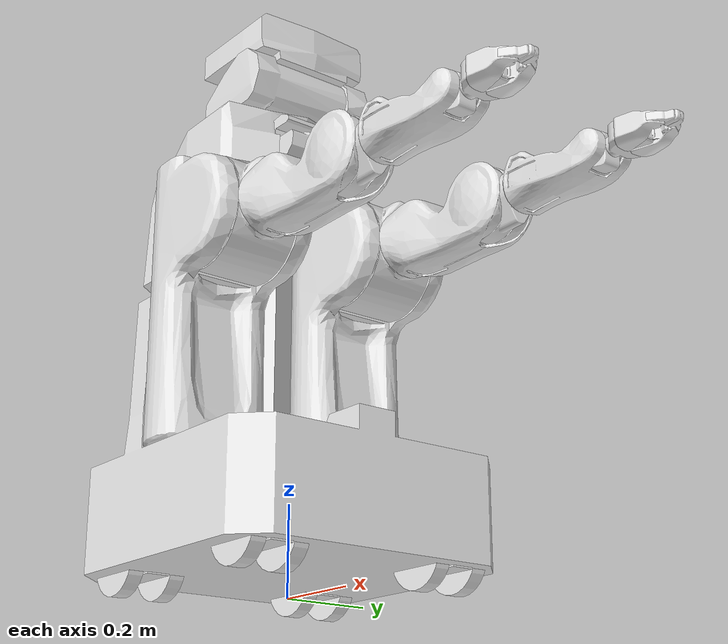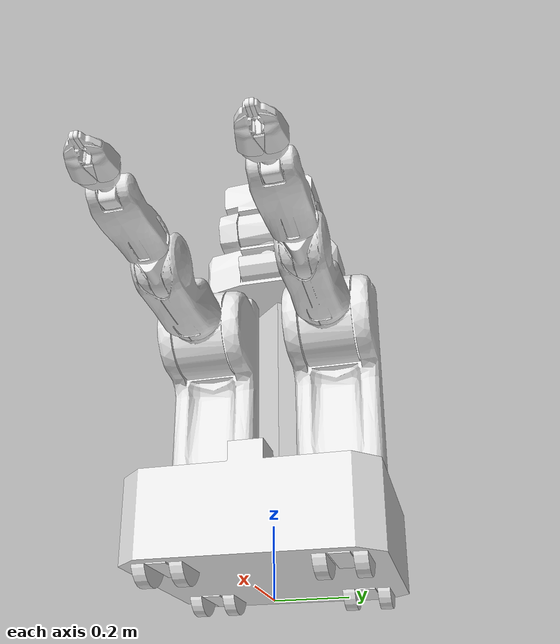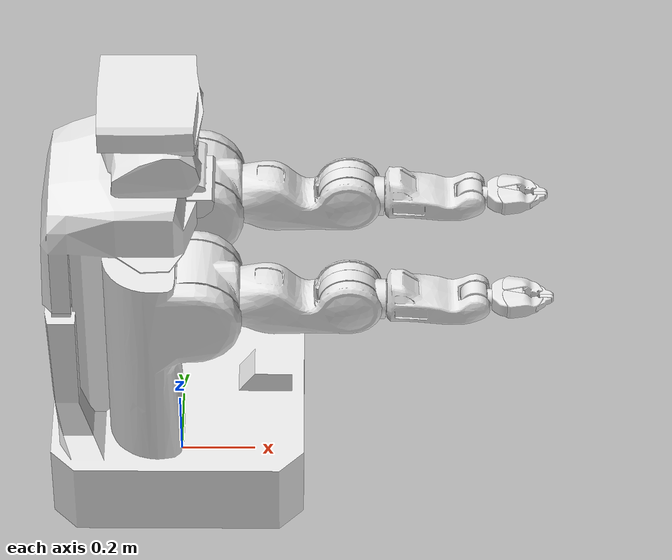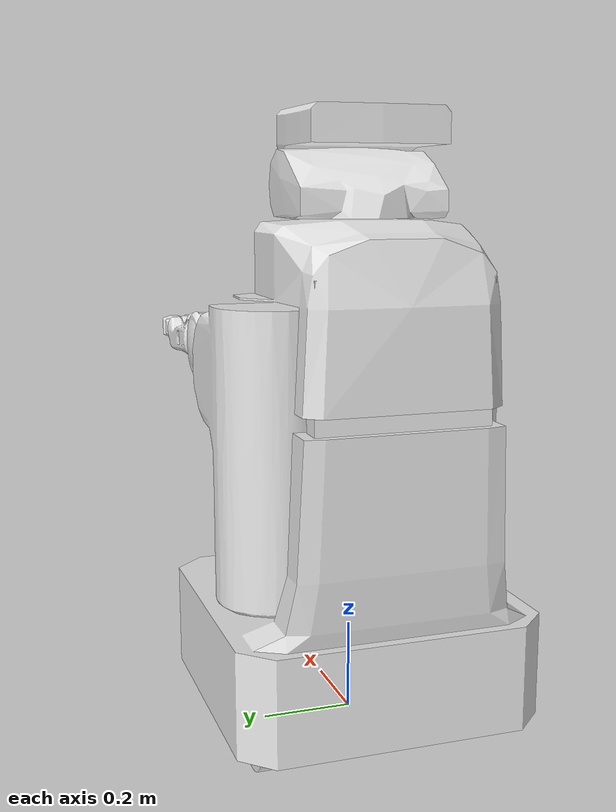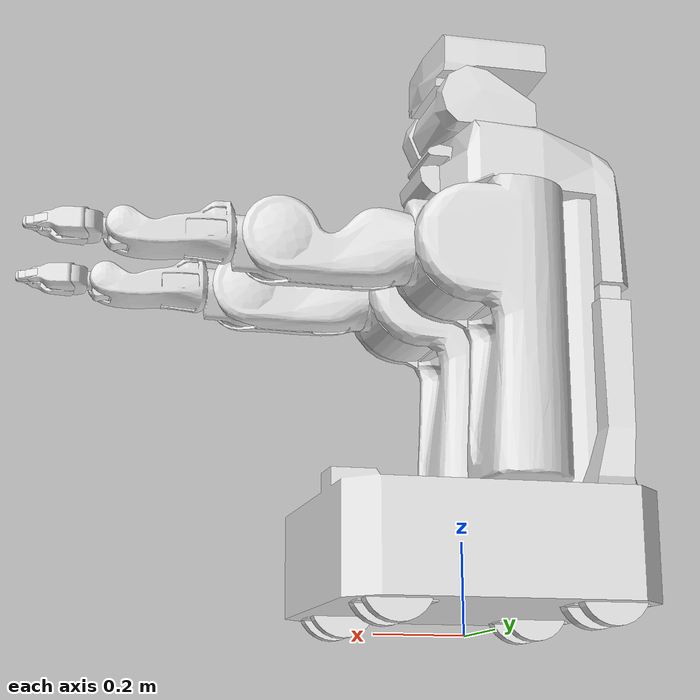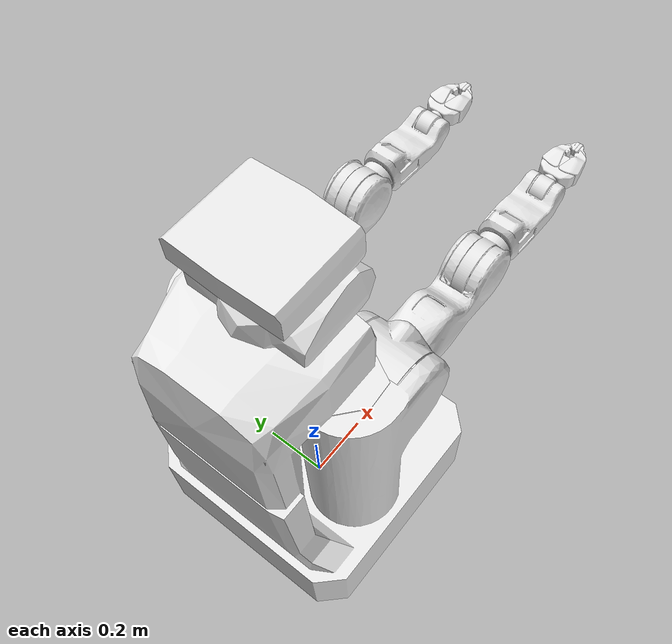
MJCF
<?xml version="1.0" ?>
<mujoco model="pr2">
	<compiler meshdir="pr2/meshes" texturedir="pr2/textures" angle="radian" autolimits="true" balanceinertia="true" inertiafromgeom="true" />
	<default>
		<default class="pr2_visual">
			<geom contype="0" conaffinity="0"/>
		</default>
		<default class="pr2_collision">
			<geom rgba="0.9 0.9 0.9 1.0" friction="0.7" solimp="0.95 0.99 0.001" solref="0.004 1"/>
		</default>
	</default>
	<asset>
		<mesh name="base_L" file="stl/base_L.stl" scale="1.0 1.0 1.0"/>
		<mesh name="caster_L" file="stl/caster_L.stl" scale="1.0 1.0 1.0"/>
		<mesh name="torso_lift_L" file="stl/torso_lift_L.stl" scale="1.0 1.0 1.0"/>
		<mesh name="head_pan_L" file="stl/head_pan_L.stl" scale="1.0 1.0 1.0"/>
		<mesh name="head_tilt_L" file="stl/head_tilt_L.stl" scale="1.0 1.0 1.0"/>
		<mesh name="tilting_hokuyo_L" file="stl/tilting_hokuyo_L.stl" scale="1.0 1.0 1.0"/>
		<mesh name="shoulder_pan" file="stl/shoulder_pan.stl" scale="1.0 1.0 1.0"/>
		<mesh name="shoulder_lift" file="stl/shoulder_lift.stl" scale="1.0 1.0 1.0"/>
		<mesh name="upper_arm_roll_L" file="stl/upper_arm_roll_L.stl" scale="1.0 1.0 1.0"/>
		<mesh name="upper_arm" file="stl/upper_arm.stl" scale="1.0 1.0 1.0"/>
		<mesh name="elbow_flex" file="stl/elbow_flex.stl" scale="1.0 1.0 1.0"/>
		<mesh name="forearm_roll_L" file="stl/forearm_roll_L.stl" scale="1.0 1.0 1.0"/>
		<mesh name="forearm" file="stl/forearm.stl" scale="1.0 1.0 1.0"/>
		<mesh name="wrist_flex" file="stl/wrist_flex.stl" scale="1.0 1.0 1.0"/>
		<mesh name="wrist_roll_L" file="stl/wrist_roll_L.stl" scale="1.0 1.0 1.0"/>
		<mesh name="gripper_palm" file="stl/gripper_palm.stl" scale="1.0 1.0 1.0"/>
		<mesh name="l_finger" file="stl/l_finger.stl" scale="1.0 1.0 1.0"/>
		<mesh name="l_finger_tip" file="stl/l_finger_tip.stl" scale="1.0 1.0 1.0"/>
	</asset>
	<worldbody>
		<body name="pr2" pos="0 0 0" quat="1.0 0.0 0.0 0.0" gravcomp="1">
			<joint name="odom_vel_lin_x_joint" type="slide" axis="1.0 0.0 0.0"/>
			<joint name="odom_vel_lin_y_joint" type="slide" axis="0.0 1.0 0.0"/>
			<joint name="odom_vel_ang_z_joint" type="hinge" axis="0.0 0.0 1.0"/>
			<body name="base_footprint" pos="0.0 0.0 0.0" quat="1.0 0.0 0.0 0.0" gravcomp="1">
				<inertial mass="1.0000001111620804e-06" pos="0.0 0.0 0.07100000232458115" quat="0.7071067690849304 0.0 0.7071067690849304 0.0" diaginertia="1.6666670214077195e-13 5.041167927544166e-09 5.041167927544166e-09" />
				<geom name="SM_base_footprint_collision_0" type="box" pos="0.0 0.0 0.07100000232458115" quat="1.0 0.0 0.0 0.0" size="0.0005000000237487257 0.0005000000237487257 0.0005000000237487257" class="pr2_collision" />
				<body name="base_link" pos="0.0 0.0 0.050999999046325684" quat="1.0 0.0 0.0 0.0" gravcomp="1">
					<geom name="SM_base_link_collision_0" type="mesh" pos="0.0 0.0 0.0" quat="1.0 0.0 0.0 0.0" mesh="base_L" class="pr2_collision" />
					<body name="base_laser_link" pos="0.2750000059604645 0.0 0.25200000405311584" quat="1.0 0.0 0.0 0.0" gravcomp="1">
						<inertial mass="0.0" pos="0.0 0.0 0.0" quat="1.0 0.0 0.0 0.0" diaginertia="0.0 0.0 0.0" />
					</body>
					<body name="fr_caster_rotation_link" pos="0.22460000216960907 -0.22460000216960907 0.028200000524520874" quat="1.0 0.0 0.0 0.0" gravcomp="1">
						<inertial mass="2.2135562896728516" pos="-0.0059445747174322605 1.1481000594670832e-09 0.08382795006036758" quat="0.5099974274635315 0.5099974274635315 0.48979854583740234 -0.48979854583740234" diaginertia="0.006514224223792553 0.025800351053476334 0.02824961021542549" />
						<geom name="SM_fr_caster_rotation_link_collision_0" type="mesh" pos="0.0 0.0 0.0" quat="1.0 0.0 0.0 0.0" mesh="caster_L" class="pr2_collision" />
						<joint name="fr_caster_rotation_joint" type="hinge" pos="0.0 0.0 6.938893903907228e-18" axis="0.0 0.0 1.0" />
						<body name="fr_caster_r_wheel_link" pos="0.0 -0.04899999871850014 0.0" quat="1.0 0.0 0.0 0.0" gravcomp="1">
							<inertial mass="0.5975016355514526" pos="0.0 0.0 0.0" quat="0.0 0.0 0.7071067690849304 -0.7071067690849304" diaginertia="0.0008931418415158987 0.0008931418415158987 0.0016711651114746928" />
							<geom name="SM_fr_caster_r_wheel_link_collision_0" type="cylinder" pos="0.0 0.0 0.0" quat="0.7071067690849304 0.7071067690849304 0.0 0.0" size="0.07479199767112732 0.017000000923871994 0.0" class="pr2_collision" />
							<joint name="fr_caster_r_wheel_joint" type="hinge" pos="0.0 0.0 0.0" axis="0.0 1.0 0.0" />
						</body>
						<body name="fr_caster_l_wheel_link" pos="0.0 0.04899999871850014 0.0" quat="1.0 0.0 0.0 0.0" gravcomp="1">
							<inertial mass="0.5975016355514526" pos="0.0 0.0 0.0" quat="0.0 0.0 0.7071067690849304 -0.7071067690849304" diaginertia="0.0008931418415158987 0.0008931418415158987 0.0016711651114746928" />
							<geom name="SM_fr_caster_l_wheel_link_collision_0" type="cylinder" pos="0.0 0.0 0.0" quat="0.7071067690849304 0.7071067690849304 0.0 0.0" size="0.07479199767112732 0.017000000923871994 0.0" class="pr2_collision" />
							<joint name="fr_caster_l_wheel_joint" type="hinge" pos="0.0 0.0 0.0" axis="0.0 1.0 0.0" />
						</body>
					</body>
					<body name="br_caster_rotation_link" pos="-0.22460000216960907 -0.22460000216960907 0.028200000524520874" quat="1.0 0.0 0.0 0.0" gravcomp="1">
						<inertial mass="2.2135562896728516" pos="-0.0059445747174322605 1.1481000594670832e-09 0.08382795006036758" quat="0.5099974274635315 0.5099974274635315 0.48979854583740234 -0.48979854583740234" diaginertia="0.006514224223792553 0.025800351053476334 0.02824961021542549" />
						<geom name="SM_br_caster_rotation_link_collision_0" type="mesh" pos="0.0 0.0 0.0" quat="1.0 0.0 0.0 0.0" mesh="caster_L" class="pr2_collision" />
						<joint name="br_caster_rotation_joint" type="hinge" pos="0.0 0.0 6.938893903907228e-18" axis="0.0 0.0 1.0" />
						<body name="br_caster_r_wheel_link" pos="0.0 -0.04899999871850014 0.0" quat="1.0 0.0 0.0 0.0" gravcomp="1">
							<inertial mass="0.5975016355514526" pos="0.0 0.0 0.0" quat="0.0 0.0 0.7071067690849304 -0.7071067690849304" diaginertia="0.0008931418415158987 0.0008931418415158987 0.0016711651114746928" />
							<geom name="SM_br_caster_r_wheel_link_collision_0" type="cylinder" pos="0.0 0.0 0.0" quat="0.7071067690849304 0.7071067690849304 0.0 0.0" size="0.07479199767112732 0.017000000923871994 0.0" class="pr2_collision" />
							<joint name="br_caster_r_wheel_joint" type="hinge" pos="0.0 0.0 0.0" axis="0.0 1.0 0.0" />
						</body>
						<body name="br_caster_l_wheel_link" pos="0.0 0.04899999871850014 0.0" quat="1.0 0.0 0.0 0.0" gravcomp="1">
							<inertial mass="0.5975016355514526" pos="0.0 0.0 0.0" quat="0.0 0.0 0.7071067690849304 -0.7071067690849304" diaginertia="0.0008931418415158987 0.0008931418415158987 0.0016711651114746928" />
							<geom name="SM_br_caster_l_wheel_link_collision_0" type="cylinder" pos="0.0 0.0 0.0" quat="0.7071067690849304 0.7071067690849304 0.0 0.0" size="0.07479199767112732 0.017000000923871994 0.0" class="pr2_collision" />
							<joint name="br_caster_l_wheel_joint" type="hinge" pos="0.0 0.0 0.0" axis="0.0 1.0 0.0" />
						</body>
					</body>
					<body name="torso_lift_motor_screw_link" pos="-0.15000000596046448 0.0 0.699999988079071" quat="1.0 0.0 0.0 0.0" gravcomp="1">
					</body>
					<body name="base_bellow_link" pos="-0.28999999165534973 0.0 0.800000011920929" quat="1.0 0.0 0.0 0.0" gravcomp="1">
						<inertial mass="5.550000190734863" pos="0.0 0.0 0.0" quat="0.5 0.5 0.5 0.5" diaginertia="0.04278125613927841 0.0644725039601326 0.10494126379489899" />
						<geom name="SM_base_bellow_link_collision_0" type="box" pos="0.0 0.0 0.0" quat="1.0 0.0 0.0 0.0" size="0.02500000037252903 0.1850000023841858 0.15000000596046448" class="pr2_collision" />
					</body>
					<body name="fl_caster_rotation_link" pos="0.22460000216960907 0.22460000216960907 0.028200000524520874" quat="1.0 0.0 0.0 0.0" gravcomp="1">
						<inertial mass="2.2135562896728516" pos="-0.0059445747174322605 1.1481000594670832e-09 0.08382795006036758" quat="0.5099974274635315 0.5099974274635315 0.48979854583740234 -0.48979854583740234" diaginertia="0.006514224223792553 0.025800351053476334 0.02824961021542549" />
						<geom name="SM_fl_caster_rotation_link_collision_0" type="mesh" pos="0.0 0.0 0.0" quat="1.0 0.0 0.0 0.0" mesh="caster_L" class="pr2_collision" />
						<joint name="fl_caster_rotation_joint" type="hinge" pos="0.0 0.0 6.938893903907228e-18" axis="0.0 0.0 1.0" />
						<body name="fl_caster_r_wheel_link" pos="0.0 -0.04899999871850014 0.0" quat="1.0 0.0 0.0 0.0" gravcomp="1">
							<inertial mass="0.5975016355514526" pos="0.0 0.0 0.0" quat="0.0 0.0 0.7071067690849304 -0.7071067690849304" diaginertia="0.0008931418415158987 0.0008931418415158987 0.0016711651114746928" />
							<geom name="SM_fl_caster_r_wheel_link_collision_0" type="cylinder" pos="0.0 0.0 0.0" quat="0.7071067690849304 0.7071067690849304 0.0 0.0" size="0.07479199767112732 0.017000000923871994 0.0" class="pr2_collision" />
							<joint name="fl_caster_r_wheel_joint" type="hinge" pos="0.0 0.0 0.0" axis="0.0 1.0 0.0" />
						</body>
						<body name="fl_caster_l_wheel_link" pos="0.0 0.04899999871850014 0.0" quat="1.0 0.0 0.0 0.0" gravcomp="1">
							<inertial mass="0.5975016355514526" pos="0.0 0.0 0.0" quat="0.0 0.0 0.7071067690849304 -0.7071067690849304" diaginertia="0.0008931418415158987 0.0008931418415158987 0.0016711651114746928" />
							<geom name="SM_fl_caster_l_wheel_link_collision_0" type="cylinder" pos="0.0 0.0 0.0" quat="0.7071067690849304 0.7071067690849304 0.0 0.0" size="0.07479199767112732 0.017000000923871994 0.0" class="pr2_collision" />
							<joint name="fl_caster_l_wheel_joint" type="hinge" pos="0.0 0.0 0.0" axis="0.0 1.0 0.0" />
						</body>
					</body>
					<body name="torso_lift_link" pos="-0.05000000074505806 0.0 0.739674985408783" quat="1.0 0.0 0.0 0.0" gravcomp="1">
						<inertial mass="51.778282165527344" pos="-0.1308211237192154 4.029592215459843e-09 0.016045676544308662" quat="-0.47259053587913513 -0.47259053587913513 -0.5259830951690674 0.5259830951690674" diaginertia="1.7747341394424438 3.3517322540283203 4.134549617767334" />
						<geom name="SM_torso_lift_link_collision_0" type="mesh" pos="0.0 0.0 0.0" quat="1.0 0.0 0.0 0.0" mesh="torso_lift_L" class="pr2_collision" />
						<joint name="torso_lift_joint" type="slide" pos="0.0 0.0 0.0" range="0.0 0.33000001311302185" axis="0.0 0.0 1.0" />
						<body name="r_torso_lift_side_plate_link" pos="0.05350000038743019 -0.20928500592708588 0.17662499845027924" quat="1.0 0.0 0.0 0.0" gravcomp="1">
							<inertial mass="0.0" pos="0.0 0.0 0.0" quat="1.0 0.0 0.0 0.0" diaginertia="0.0 0.0 0.0" />
						</body>
						<body name="head_pan_link" pos="-0.017069999128580093 0.0 0.38144999742507935" quat="1.0 0.0 0.0 0.0" gravcomp="1">
							<inertial mass="7.458215713500977" pos="0.031194353476166725 0.00014981458662077785 -0.00551903061568737" quat="0.041526779532432556 -0.7037166357040405 0.7080620527267456 -0.04131028428673744" diaginertia="0.04139060527086258 0.07164635509252548 0.095054991543293" />
							<geom name="SM_head_pan_link_collision_0" type="mesh" pos="0.0 0.0 0.0" quat="1.0 0.0 0.0 0.0" mesh="head_pan_L" class="pr2_collision" />
							<joint name="head_pan_joint" type="hinge" pos="0.0 0.0 -1.1102230246251565e-16" range="-3.006999969482422 3.006999969482422" axis="0.0 0.0 1.0" />
							<body name="head_tilt_link" pos="0.06800000369548798 0.0 0.0" quat="1.0 0.0 0.0 0.0" gravcomp="1">
								<inertial mass="5.654116153717041" pos="-0.05152539536356926 -1.8105554318026407e-06 0.114493727684021" quat="-1.3094496353005525e-05 0.4793747067451477 2.0897408830933273e-05 0.8776103258132935" diaginertia="0.06123911961913109 0.12264703214168549 0.13844925165176392" />
								<geom name="SM_head_tilt_link_collision_0" type="mesh" pos="0.0 0.0 0.0" quat="1.0 0.0 0.0 0.0" mesh="head_tilt_L" class="pr2_collision" />
								<joint name="head_tilt_joint" type="hinge" pos="0.0 0.0 0.0" range="-0.47123798727989197 1.3962600231170654" axis="0.0 1.0 0.0" />
								<body name="head_plate_frame" pos="0.02319999970495701 0.0 0.06449999660253525" quat="1.0 0.0 0.0 0.0" gravcomp="1">
									<inertial mass="0.0009999999310821295" pos="0.0 0.0 0.0" quat="1.0 0.0 0.0 0.0" diaginertia="1.666666449295917e-08 1.666666449295917e-08 1.666666449295917e-08" />
									<geom name="SM_head_plate_frame_collision_0" type="box" pos="0.0 0.0 0.0" quat="1.0 0.0 0.0 0.0" size="0.004999999888241291 0.004999999888241291 0.004999999888241291" class="pr2_collision" />
									<body name="projector_wg6802418_frame" pos="0.0 0.10999999940395355 0.05460000038146973" quat="1.0 0.0 0.0 0.0" gravcomp="1">
										<inertial mass="0.0" pos="0.0 0.0 0.0" quat="1.0 0.0 0.0 0.0" diaginertia="0.0 0.0 0.0" />
										<body name="projector_wg6802418_child_frame" pos="0.0 0.0 0.0" quat="-0.7071067690849304 0.0 0.7071067690849304 0.0" gravcomp="1">
											<inertial mass="0.0" pos="0.0 0.0 0.0" quat="1.0 0.0 0.0 0.0" diaginertia="0.0 0.0 0.0" />
										</body>
									</body>
									<body name="sensor_mount_link" pos="0.0 0.0 0.0" quat="1.0 0.0 0.0 0.0" gravcomp="1">
										<inertial mass="0.0" pos="0.0 0.0 0.0" quat="1.0 0.0 0.0 0.0" diaginertia="0.0 0.0 0.0" />
										<body name="double_stereo_link" pos="0.0 0.0 0.0" quat="1.0 0.0 0.0 0.0" gravcomp="1">
											<inertial mass="0.0" pos="0.0 0.0 0.0" quat="1.0 0.0 0.0 0.0" diaginertia="0.0 0.0 0.0" />
											<body name="narrow_stereo_link" pos="0.04500000178813934 0.05999999865889549 0.05009999871253967" quat="1.0 0.0 0.0 0.0" gravcomp="1">
												<inertial mass="0.0" pos="0.0 0.0 0.0" quat="1.0 0.0 0.0 0.0" diaginertia="0.0 0.0 0.0" />
												<body name="narrow_stereo_l_stereo_camera_frame" pos="0.0 0.0 0.0" quat="1.0 0.0 0.0 0.0" gravcomp="1">
													<inertial mass="0.0" pos="0.0 0.0 0.0" quat="1.0 0.0 0.0 0.0" diaginertia="0.0 0.0 0.0" />
													<body name="narrow_stereo_r_stereo_camera_frame" pos="0.0 -0.09000000357627869 0.0" quat="1.0 0.0 0.0 0.0" gravcomp="1">
														<inertial mass="0.0" pos="0.0 0.0 0.0" quat="1.0 0.0 0.0 0.0" diaginertia="0.0 0.0 0.0" />
														<body name="narrow_stereo_r_stereo_camera_optical_frame" pos="0.0 0.0 0.0" quat="0.4999999701976776 -0.5 0.5 -0.5" gravcomp="1">
															<inertial mass="0.0" pos="0.0 0.0 0.0" quat="1.0 0.0 0.0 0.0" diaginertia="0.0 0.0 0.0" />
														</body>
													</body>
													<body name="narrow_stereo_l_stereo_camera_optical_frame" pos="0.0 0.0 0.0" quat="0.4999999701976776 -0.5 0.5 -0.5" gravcomp="1">
														<inertial mass="0.0" pos="0.0 0.0 0.0" quat="1.0 0.0 0.0 0.0" diaginertia="0.0 0.0 0.0" />
													</body>
												</body>
												<body name="narrow_stereo_optical_frame" pos="0.0 0.0 0.0" quat="0.4999999701976776 -0.5 0.5 -0.5" gravcomp="1">
													<inertial mass="0.0" pos="0.0 0.0 0.0" quat="1.0 0.0 0.0 0.0" diaginertia="0.0 0.0 0.0" />
												</body>
											</body>
											<body name="wide_stereo_link" pos="0.04500000178813934 0.029999999329447746 0.05009999871253967" quat="1.0 0.0 0.0 0.0" gravcomp="1">
												<inertial mass="0.0" pos="0.0 0.0 0.0" quat="1.0 0.0 0.0 0.0" diaginertia="0.0 0.0 0.0" />
												<body name="wide_stereo_l_stereo_camera_frame" pos="0.0 0.0 0.0" quat="1.0 0.0 0.0 0.0" gravcomp="1">
													<inertial mass="0.0" pos="0.0 0.0 0.0" quat="1.0 0.0 0.0 0.0" diaginertia="0.0 0.0 0.0" />
													<body name="wide_stereo_r_stereo_camera_frame" pos="0.0 -0.09000000357627869 0.0" quat="1.0 0.0 0.0 0.0" gravcomp="1">
														<inertial mass="0.0" pos="0.0 0.0 0.0" quat="1.0 0.0 0.0 0.0" diaginertia="0.0 0.0 0.0" />
														<body name="wide_stereo_r_stereo_camera_optical_frame" pos="0.0 0.0 0.0" quat="0.4999999701976776 -0.5 0.5 -0.5" gravcomp="1">
															<inertial mass="0.0" pos="0.0 0.0 0.0" quat="1.0 0.0 0.0 0.0" diaginertia="0.0 0.0 0.0" />
														</body>
													</body>
													<body name="wide_stereo_l_stereo_camera_optical_frame" pos="0.0 0.0 0.0" quat="0.4999999701976776 -0.5 0.5 -0.5" gravcomp="1">
														<inertial mass="0.0" pos="0.0 0.0 0.0" quat="1.0 0.0 0.0 0.0" diaginertia="0.0 0.0 0.0" />
													</body>
												</body>
												<body name="wide_stereo_optical_frame" pos="0.0 0.0 0.0" quat="0.4999999701976776 -0.5 0.5 -0.5" gravcomp="1">
													<inertial mass="0.0" pos="0.0 0.0 0.0" quat="1.0 0.0 0.0 0.0" diaginertia="0.0 0.0 0.0" />
												</body>
											</body>
										</body>
										<body name="high_def_frame" pos="0.04645700007677078 -0.10999999940395355 0.05460000038146973" quat="1.0 0.0 0.0 0.0" gravcomp="1">
											<inertial mass="0.0" pos="0.0 0.0 0.0" quat="1.0 0.0 0.0 0.0" diaginertia="0.0 0.0 0.0" />
											<body name="high_def_optical_frame" pos="0.0 0.0 0.0" quat="0.4999999701976776 -0.5 0.5 -0.5" gravcomp="1">
												<inertial mass="0.0" pos="0.0 0.0 0.0" quat="1.0 0.0 0.0 0.0" diaginertia="0.0 0.0 0.0" />
											</body>
										</body>
									</body>
								</body>
							</body>
						</body>
						<body name="laser_tilt_mount_link" pos="0.0989300012588501 0.0 0.22699999809265137" quat="1.0 0.0 0.0 0.0" gravcomp="1">
							<inertial mass="1.5732203722000122" pos="-0.006016708444803953 3.2764393975703854e-10 0.0022414783015847206" quat="-0.3104150593280792 0.6353286504745483 0.6353286504745483 -0.3104150593280792" diaginertia="0.002926282351836562 0.004535055253654718 0.005101508926600218" />
							<geom name="SM_laser_tilt_mount_link_collision_0" type="mesh" pos="0.0 0.0 0.0" quat="1.0 0.0 0.0 0.0" mesh="tilting_hokuyo_L" class="pr2_collision" />
							<joint name="laser_tilt_mount_joint" type="hinge" pos="0.0 0.0 -1.1102230246251565e-16" range="-0.7853999733924866 1.483530044555664" axis="0.0 1.0 0.0" />
							<body name="laser_tilt_link" pos="0.0 0.0 0.029999999329447746" quat="1.0 0.0 0.0 0.0" gravcomp="1">
								<inertial mass="0.0" pos="0.0 0.0 0.0" quat="1.0 0.0 0.0 0.0" diaginertia="0.0 0.0 0.0" />
							</body>
						</body>
						<body name="r_shoulder_pan_link" pos="0.0 -0.18799999356269836 0.0" quat="1.0 0.0 0.0 0.0" gravcomp="1">
							<inertial mass="27.858089447021484" pos="-0.007217532955110073 -1.2285015145607758e-05 -0.15199442207813263" quat="0.00025214478955604136 -0.6800189018249512 0.0002595585829112679 0.7331945300102234" diaginertia="0.2705267369747162 1.7231812477111816 1.7425432205200195" />
							<geom name="SM_r_shoulder_pan_link_collision_0" type="mesh" pos="0.0 0.0 0.0" quat="1.0 0.0 0.0 0.0" mesh="shoulder_pan" class="pr2_collision" />
							<joint name="r_shoulder_pan_joint" type="hinge" pos="0.0 0.0 0.0" range="-2.285398244857788 0.7146018147468567" axis="0.0 0.0 1.0" />
							<body name="r_shoulder_lift_link" pos="0.10000000149011612 0.0 0.0" quat="1.0 0.0 0.0 0.0" gravcomp="1">
								<inertial mass="0.32213330268859863" pos="-0.011961976066231728 0.0005128994234837592 0.0035168323665857315" quat="-0.5297175049781799 0.5324012637138367 0.4633755385875702 0.4703523814678192" diaginertia="0.002866726601496339 0.0035295477136969566 0.005175495985895395" />
								<geom name="SM_r_shoulder_lift_link_collision_0" type="mesh" pos="0.0 0.0 0.0" quat="1.0 0.0 0.0 0.0" mesh="shoulder_lift" class="pr2_collision" />
								<joint name="r_shoulder_lift_joint" type="hinge" pos="0.0 0.0 0.0" range="-0.5235999822616577 1.3963000774383545" axis="0.0 1.0 0.0" />
								<body name="r_upper_arm_roll_link" pos="0.0 0.0 0.0" quat="1.0 0.0 0.0 0.0" gravcomp="1">
									<inertial mass="0.07235559076070786" pos="0.12487796694040298 -2.818719167407835e-06 -1.3431765637506032e-06" quat="-0.7070866227149963 0.7071269154548645 -1.2402690117596649e-05 3.837394160655094e-06" diaginertia="0.00022902380442246795 0.0011928267776966095 0.0012989923125132918" />
									<geom name="SM_r_upper_arm_roll_link_collision_0" type="mesh" pos="0.0 0.0 0.0" quat="1.0 0.0 0.0 0.0" mesh="upper_arm_roll_L" class="pr2_collision" />
									<joint name="r_upper_arm_roll_joint" type="hinge" pos="0.0 0.0 0.0" range="-3.9000000953674316 0.800000011920929" axis="1.0 0.0 0.0" />
									<body name="r_upper_arm_link" pos="0.0 0.0 0.0" quat="1.0 0.0 0.0 0.0" gravcomp="1">
										<inertial mass="5.2022385597229" pos="0.2734791040420532 -3.200087303412147e-05 -0.010643254034221172" quat="0.7068957090377808 0.7070910930633545 0.01264550257474184 -0.012677999213337898" diaginertia="0.016427578404545784 0.453969269990921 0.4549430012702942" />
										<geom name="SM_r_upper_arm_link_collision_0" type="mesh" pos="0.0 0.0 0.0" quat="1.0 0.0 0.0 0.0" mesh="upper_arm" class="pr2_collision" />
										<body name="r_elbow_flex_link" pos="0.4000000059604645 0.0 0.0" quat="1.0 0.0 0.0 0.0" gravcomp="1">
											<inertial mass="0.18842573463916779" pos="0.06674972921609879 -0.0002075084048556164 -0.012235036119818687" quat="0.7037703990936279 0.7038841247558594 0.06714816391468048 -0.06888704746961594" diaginertia="0.00034694798523560166 0.00123549101408571 0.0014423702377825975" />
											<geom name="SM_r_elbow_flex_link_collision_0" type="mesh" pos="0.0 0.0 0.0" quat="1.0 0.0 0.0 0.0" mesh="elbow_flex" class="pr2_collision" />
											<joint name="r_elbow_flex_joint" type="hinge" pos="0.0 0.0 0.0" range="-2.3213002681732178 0.0" axis="0.0 1.0 0.0" />
											<body name="r_forearm_roll_link" pos="0.0 0.0 0.0" quat="1.0 0.0 0.0 0.0" gravcomp="1">
												<inertial mass="0.05108305439352989" pos="0.06429405510425568 1.1574408745218534e-05 0.003290909342467785" quat="0.9995561838150024 0.00023118837270885706 -0.02978873811662197 0.00011263530905125663" diaginertia="2.3116032025427558e-05 0.00030341188539750874 0.00030664115911349654" />
												<geom name="SM_r_forearm_roll_link_collision_0" type="mesh" pos="0.0 0.0 0.0" quat="1.0 0.0 0.0 0.0" mesh="forearm_roll_L" class="pr2_collision" />
												<joint name="r_forearm_roll_joint" type="hinge" pos="0.0 0.0 0.0" axis="1.0 0.0 0.0" />
												<body name="r_forearm_cam_frame" pos="0.13500000536441803 0.0 0.04399999976158142" quat="0.6792877912521362 0.679287850856781 -0.19638746976852417 0.19638748466968536" gravcomp="1">
													<inertial mass="0.0" pos="0.0 0.0 0.0" quat="1.0 0.0 0.0 0.0" diaginertia="0.0 0.0 0.0" />
													<body name="r_forearm_cam_optical_frame" pos="0.0 0.0 -2.7755575615628914e-17" quat="0.4999999701976776 -0.5 0.5 -0.5" gravcomp="1">
														<inertial mass="0.0" pos="0.0 0.0 0.0" quat="1.0 0.0 0.0 0.0" diaginertia="0.0 0.0 0.0" />
													</body>
												</body>
												<body name="r_forearm_link" pos="0.0 0.0 0.0" quat="1.0 0.0 0.0 0.0" gravcomp="1">
													<inertial mass="2.0103166103363037" pos="0.201139897108078 1.223308117914712e-05 -0.004733517300337553" quat="-4.6840552386129275e-05 0.9998863339424133 2.6327637897338718e-05 -0.015078271739184856" diaginertia="0.003459537634626031 0.09273631125688553 0.09368810802698135" />
													<geom name="SM_r_forearm_link_collision_0" type="mesh" pos="0.0 0.0 0.0" quat="1.0 0.0 0.0 0.0" mesh="forearm" class="pr2_collision" />
													<body name="r_wrist_flex_link" pos="0.32100000977516174 0.0 0.0" quat="1.0 0.0 0.0 0.0" gravcomp="1">
														<inertial mass="0.1802304983139038" pos="-0.0017590946517884731 1.8078018229061854e-06 -0.0012588765239343047" quat="0.5507289171218872 0.5508716106414795 0.44338276982307434 -0.44345223903656006" diaginertia="8.03590810392052e-05 9.936121932696551e-05 0.000124882732052356" />
														<geom name="SM_r_wrist_flex_link_collision_0" type="mesh" pos="0.0 0.0 0.0" quat="1.0 0.0 0.0 0.0" mesh="wrist_flex" class="pr2_collision" />
														<joint name="r_wrist_flex_joint" type="hinge" pos="0.0 0.0 0.0" range="-2.180000066757202 0.0" axis="0.0 1.0 0.0" />
														<body name="r_wrist_roll_link" pos="0.0 0.0 0.0" quat="1.0 0.0 0.0 0.0" gravcomp="1">
															<inertial mass="0.011862936429679394" pos="0.03189396485686302 -1.0933553312497679e-05 -9.648863397160312e-07" quat="0.9961433410644531 0.0877404734492302 4.841649570153095e-06 -0.0001755533885443583" diaginertia="1.4964700767450267e-06 1.311536743742181e-05 1.311776304646628e-05" />
															<geom name="SM_r_wrist_roll_link_collision_0" type="mesh" pos="0.0 0.0 0.0" quat="1.0 0.0 0.0 0.0" mesh="wrist_roll_L" class="pr2_collision" />
															<joint name="r_wrist_roll_joint" type="hinge" pos="0.0 0.0 0.0" axis="1.0 0.0 0.0" />
															<body name="r_gripper_palm_link" pos="0.0 0.0 0.0" quat="1.0 0.0 0.0 0.0" gravcomp="1">
																<inertial mass="0.346778929233551" pos="0.08001227676868439 -1.348753926322388e-06 2.0504555777733913e-06" quat="-6.546391523443162e-05 1.0 -1.1079485375375953e-05 1.3545548426918685e-05" diaginertia="0.0002749123377725482 0.0024741138331592083 0.002621866762638092" />
																<geom name="SM_r_gripper_palm_link_collision_0" type="mesh" pos="0.0 0.0 0.0" quat="1.0 0.0 0.0 0.0" mesh="gripper_palm" class="pr2_collision" />
																<body name="r_gripper_motor_accelerometer_link" pos="0.0 0.0 0.0" quat="1.0 0.0 0.0 0.0" gravcomp="1">
																	<inertial mass="1.0000001111620804e-06" pos="0.0 0.0 0.0" quat="1.0 0.0 0.0 0.0" diaginertia="1.6666670214077195e-13 1.6666670214077195e-13 1.6666670214077195e-13" />
																	<geom name="SM_r_gripper_motor_accelerometer_link_collision_0" type="box" pos="0.0 0.0 0.0" quat="1.0 0.0 0.0 0.0" size="0.0005000000237487257 0.0005000000237487257 0.0005000000237487257" class="pr2_collision" />
																</body>
																<body name="r_gripper_motor_slider_link" pos="0.1682800054550171 0.0 0.0" quat="1.0 0.0 0.0 0.0" gravcomp="1">
																	<body name="r_gripper_motor_screw_link" pos="0.0 0.0 0.0" quat="1.0 0.0 0.0 0.0" gravcomp="1">
																	</body>
																</body>
																<body name="r_gripper_l_finger_link" pos="0.07690999656915665 0.009999999776482582 0.0" quat="1.0 0.0 0.0 0.0" gravcomp="1">
																	<inertial mass="0.18087133765220642" pos="0.031097745522856712 0.017811013385653496 6.266719196901249e-07" quat="0.9800462126731873 0.0005514603690244257 0.00012912458623759449 0.1987690031528473" diaginertia="7.974637992447242e-05 0.0003700049710460007 0.0003738711238838732" />
																	<geom name="SM_r_gripper_l_finger_link_collision_0" type="mesh" pos="0.0 0.0 0.0" quat="1.0 0.0 0.0 0.0" mesh="l_finger" class="pr2_collision" />
																	<joint name="r_gripper_l_finger_joint" type="hinge" pos="0.0 0.0 0.0" range="0.0 0.5479999780654907" axis="0.0 0.0 1.0" />
																	<body name="r_gripper_l_finger_tip_link" pos="0.09137000143527985 0.00494999997317791 0.0" quat="1.0 0.0 0.0 0.0" gravcomp="1">
																		<inertial mass="0.019972020760178566" pos="0.004215516149997711 0.0014496605144813657 -2.577246050350368e-06" quat="0.9347647428512573 -0.0006915477570146322 0.00018482831364963204 -0.35526666045188904" diaginertia="1.6885959439605358e-06 6.2432159211311955e-06 6.715718882333022e-06" />
																		<geom name="SM_r_gripper_l_finger_tip_link_collision_0" type="mesh" pos="0.0 0.0 0.0" quat="1.0 0.0 0.0 0.0" mesh="l_finger_tip" class="pr2_collision" />
																		<joint name="r_gripper_l_finger_tip_joint" type="hinge" pos="0.0 0.0 0.0" range="0.0 0.5479999780654907" axis="0.0 0.0 -1.0" />
																	</body>
																</body>
																<body name="r_gripper_r_finger_link" pos="0.07690999656915665 -0.009999999776482582 0.0" quat="1.0 0.0 0.0 0.0" gravcomp="1">
																	<inertial mass="0.18087133765220642" pos="0.031097745522856712 -0.017811013385653496 -6.282289746195602e-07" quat="0.9800462126731873 0.0005515032098628581 -0.00012911589874420315 -0.1987690031528473" diaginertia="7.974637992447242e-05 0.0003700049710460007 0.0003738711238838732" />
																	<geom name="SM_r_gripper_r_finger_link_collision_0" type="mesh" pos="0.0 0.0 0.0" quat="-4.371138828673793e-08 1.0 0.0 0.0" mesh="l_finger" class="pr2_collision" />
																	<joint name="r_gripper_r_finger_joint" type="hinge" pos="0.0 0.0 0.0" range="0.0 0.5479999780654907" axis="0.0 0.0 -1.0" />
																	<body name="r_gripper_r_finger_tip_link" pos="0.09137000143527985 -0.00494999997317791 0.0" quat="1.0 0.0 0.0 0.0" gravcomp="1">
																		<inertial mass="0.019972020760178566" pos="0.004215516149997711 -0.0014496605144813657 2.577119403213146e-06" quat="0.9347647428512573 -0.000691506895236671 -0.00018484385509509593 0.35526666045188904" diaginertia="1.6885959439605358e-06 6.2432159211311955e-06 6.715718882333022e-06" />
																		<geom name="SM_r_gripper_r_finger_tip_link_collision_0" type="mesh" pos="0.0 0.0 0.0" quat="-4.371138828673793e-08 1.0 0.0 0.0" mesh="l_finger_tip" class="pr2_collision" />
																		<joint name="r_gripper_r_finger_tip_joint" type="hinge" pos="0.0 0.0 0.0" range="0.0 0.5479999780654907" axis="0.0 0.0 1.0" />
																		<body name="r_gripper_l_finger_tip_frame" pos="0.0 0.0 0.0" quat="1.0 0.0 0.0 0.0" gravcomp="1">
																		</body>
																	</body>
																</body>
																<body name="r_gripper_led_frame" pos="0.05130000039935112 0.0 0.024399999529123306" quat="1.0 0.0 0.0 0.0" gravcomp="1">
																	<inertial mass="0.0" pos="0.0 0.0 0.0" quat="1.0 0.0 0.0 0.0" diaginertia="0.0 0.0 0.0" />
																</body>
																<body name="r_gripper_tool_frame" pos="0.18000000715255737 0.0 0.0" quat="1.0 0.0 0.0 0.0" gravcomp="1">
																	<inertial mass="0.0" pos="0.0 0.0 0.0" quat="1.0 0.0 0.0 0.0" diaginertia="0.0 0.0 0.0" />
																</body>
															</body>
														</body>
													</body>
												</body>
											</body>
										</body>
									</body>
								</body>
							</body>
						</body>
						<body name="l_shoulder_pan_link" pos="0.0 0.18799999356269836 0.0" quat="1.0 0.0 0.0 0.0" gravcomp="1">
							<inertial mass="27.858089447021484" pos="-0.007217532955110073 -1.2285015145607758e-05 -0.15199442207813263" quat="0.00025214478955604136 -0.6800189018249512 0.0002595585829112679 0.7331945300102234" diaginertia="0.2705267369747162 1.7231812477111816 1.7425432205200195" />
							<geom name="SM_l_shoulder_pan_link_collision_0" type="mesh" pos="0.0 0.0 0.0" quat="1.0 0.0 0.0 0.0" mesh="shoulder_pan" class="pr2_collision" />
							<joint name="l_shoulder_pan_joint" type="hinge" pos="0.0 0.0 0.0" range="-0.7146018147468567 2.285398244857788" axis="0.0 0.0 1.0" />
							<body name="l_shoulder_lift_link" pos="0.10000000149011612 0.0 0.0" quat="1.0 0.0 0.0 0.0" gravcomp="1">
								<inertial mass="0.32213330268859863" pos="-0.011961976066231728 0.0005128994234837592 0.0035168323665857315" quat="-0.5297175049781799 0.5324012637138367 0.4633755385875702 0.4703523814678192" diaginertia="0.002866726601496339 0.0035295477136969566 0.005175495985895395" />
								<geom name="SM_l_shoulder_lift_link_collision_0" type="mesh" pos="0.0 0.0 0.0" quat="1.0 0.0 0.0 0.0" mesh="shoulder_lift" class="pr2_collision" />
								<joint name="l_shoulder_lift_joint" type="hinge" pos="0.0 0.0 0.0" range="-0.5235999822616577 1.3963000774383545" axis="0.0 1.0 0.0" />
								<body name="l_upper_arm_roll_link" pos="0.0 0.0 0.0" quat="1.0 0.0 0.0 0.0" gravcomp="1">
									<inertial mass="0.07235559076070786" pos="0.12487796694040298 -2.818719167407835e-06 -1.3431765637506032e-06" quat="-0.7070866227149963 0.7071269154548645 -1.2402690117596649e-05 3.837394160655094e-06" diaginertia="0.00022902380442246795 0.0011928267776966095 0.0012989923125132918" />
									<geom name="SM_l_upper_arm_roll_link_collision_0" type="mesh" pos="0.0 0.0 0.0" quat="1.0 0.0 0.0 0.0" mesh="upper_arm_roll_L" class="pr2_collision" />
									<joint name="l_upper_arm_roll_joint" type="hinge" pos="0.0 0.0 0.0" range="-0.800000011920929 3.9000000953674316" axis="1.0 0.0 0.0" />
									<body name="l_upper_arm_link" pos="0.0 0.0 0.0" quat="1.0 0.0 0.0 0.0" gravcomp="1">
										<inertial mass="5.2022385597229" pos="0.2734791040420532 -3.200087303412147e-05 -0.010643254034221172" quat="0.7068957090377808 0.7070910930633545 0.01264550257474184 -0.012677999213337898" diaginertia="0.016427578404545784 0.453969269990921 0.4549430012702942" />
										<geom name="SM_l_upper_arm_link_collision_0" type="mesh" pos="0.0 0.0 0.0" quat="1.0 0.0 0.0 0.0" mesh="upper_arm" class="pr2_collision" />
										<body name="l_elbow_flex_link" pos="0.4000000059604645 0.0 0.0" quat="1.0 0.0 0.0 0.0" gravcomp="1">
											<inertial mass="0.18842573463916779" pos="0.06674972921609879 -0.0002075084048556164 -0.012235036119818687" quat="0.7037703990936279 0.7038841247558594 0.06714816391468048 -0.06888704746961594" diaginertia="0.00034694798523560166 0.00123549101408571 0.0014423702377825975" />
											<geom name="SM_l_elbow_flex_link_collision_0" type="mesh" pos="0.0 0.0 0.0" quat="1.0 0.0 0.0 0.0" mesh="elbow_flex" class="pr2_collision" />
											<joint name="l_elbow_flex_joint" type="hinge" pos="0.0 0.0 0.0" range="-2.3213002681732178 0.0" axis="0.0 1.0 0.0" />
											<body name="l_forearm_roll_link" pos="0.0 0.0 0.0" quat="1.0 0.0 0.0 0.0" gravcomp="1">
												<inertial mass="0.05108305439352989" pos="0.06429405510425568 1.1574408745218534e-05 0.003290909342467785" quat="0.9995561838150024 0.00023118837270885706 -0.02978873811662197 0.00011263530905125663" diaginertia="2.3116032025427558e-05 0.00030341188539750874 0.00030664115911349654" />
												<geom name="SM_l_forearm_roll_link_collision_0" type="mesh" pos="0.0 0.0 0.0" quat="1.0 0.0 0.0 0.0" mesh="forearm_roll_L" class="pr2_collision" />
												<joint name="l_forearm_roll_joint" type="hinge" pos="0.0 0.0 0.0" axis="1.0 0.0 0.0" />
												<body name="l_forearm_cam_frame" pos="0.13500000536441803 0.0 0.04399999976158142" quat="-0.6792877912521362 0.679287850856781 0.19638746976852417 0.19638748466968536" gravcomp="1">
													<inertial mass="0.0" pos="0.0 0.0 0.0" quat="1.0 0.0 0.0 0.0" diaginertia="0.0 0.0 0.0" />
													<body name="l_forearm_cam_optical_frame" pos="0.0 0.0 -2.7755575615628914e-17" quat="0.4999999701976776 -0.5 0.5 -0.5" gravcomp="1">
														<inertial mass="0.0" pos="0.0 0.0 0.0" quat="1.0 0.0 0.0 0.0" diaginertia="0.0 0.0 0.0" />
													</body>
												</body>
												<body name="l_forearm_link" pos="0.0 0.0 0.0" quat="1.0 0.0 0.0 0.0" gravcomp="1">
													<inertial mass="2.0103166103363037" pos="0.201139897108078 1.223308117914712e-05 -0.004733517300337553" quat="-4.6840552386129275e-05 0.9998863339424133 2.6327637897338718e-05 -0.015078271739184856" diaginertia="0.003459537634626031 0.09273631125688553 0.09368810802698135" />
													<geom name="SM_l_forearm_link_collision_0" type="mesh" pos="0.0 0.0 0.0" quat="1.0 0.0 0.0 0.0" mesh="forearm" class="pr2_collision" />
													<body name="l_wrist_flex_link" pos="0.32100000977516174 0.0 0.0" quat="1.0 0.0 0.0 0.0" gravcomp="1">
														<inertial mass="0.1802304983139038" pos="-0.0017590946517884731 1.8078018229061854e-06 -0.0012588765239343047" quat="0.5507289171218872 0.5508716106414795 0.44338276982307434 -0.44345223903656006" diaginertia="8.03590810392052e-05 9.936121932696551e-05 0.000124882732052356" />
														<geom name="SM_l_wrist_flex_link_collision_0" type="mesh" pos="0.0 0.0 0.0" quat="1.0 0.0 0.0 0.0" mesh="wrist_flex" class="pr2_collision" />
														<joint name="l_wrist_flex_joint" type="hinge" pos="0.0 0.0 0.0" range="-2.180000066757202 0.0" axis="0.0 1.0 0.0" />
														<body name="l_wrist_roll_link" pos="0.0 0.0 0.0" quat="1.0 0.0 0.0 0.0" gravcomp="1">
															<inertial mass="0.011862936429679394" pos="0.03189396485686302 -1.0933553312497679e-05 -9.648863397160312e-07" quat="0.9961433410644531 0.0877404734492302 4.841649570153095e-06 -0.0001755533885443583" diaginertia="1.4964700767450267e-06 1.311536743742181e-05 1.311776304646628e-05" />
															<geom name="SM_l_wrist_roll_link_collision_0" type="mesh" pos="0.0 0.0 0.0" quat="1.0 0.0 0.0 0.0" mesh="wrist_roll_L" class="pr2_collision" />
															<joint name="l_wrist_roll_joint" type="hinge" pos="0.0 0.0 0.0" axis="1.0 0.0 0.0" />
															<body name="l_gripper_palm_link" pos="0.0 0.0 0.0" quat="1.0 0.0 0.0 0.0" gravcomp="1">
																<inertial mass="0.346778929233551" pos="0.08001227676868439 -1.348753926322388e-06 2.0504555777733913e-06" quat="-6.546391523443162e-05 1.0 -1.1079485375375953e-05 1.3545548426918685e-05" diaginertia="0.0002749123377725482 0.0024741138331592083 0.002621866762638092" />
																<geom name="SM_l_gripper_palm_link_collision_0" type="mesh" pos="0.0 0.0 0.0" quat="1.0 0.0 0.0 0.0" mesh="gripper_palm" class="pr2_collision" />
																<body name="l_gripper_motor_accelerometer_link" pos="0.0 0.0 0.0" quat="1.0 0.0 0.0 0.0" gravcomp="1">
																	<inertial mass="1.0000001111620804e-06" pos="0.0 0.0 0.0" quat="1.0 0.0 0.0 0.0" diaginertia="1.6666670214077195e-13 1.6666670214077195e-13 1.6666670214077195e-13" />
																	<geom name="SM_l_gripper_motor_accelerometer_link_collision_0" type="box" pos="0.0 0.0 0.0" quat="1.0 0.0 0.0 0.0" size="0.0005000000237487257 0.0005000000237487257 0.0005000000237487257" class="pr2_collision" />
																</body>
																<body name="l_gripper_motor_slider_link" pos="0.1682800054550171 0.0 0.0" quat="1.0 0.0 0.0 0.0" gravcomp="1">
																	<body name="l_gripper_motor_screw_link" pos="0.0 0.0 0.0" quat="1.0 0.0 0.0 0.0" gravcomp="1">
																	</body>
																</body>
																<body name="l_gripper_l_finger_link" pos="0.07690999656915665 0.009999999776482582 0.0" quat="1.0 0.0 0.0 0.0" gravcomp="1">
																	<inertial mass="0.18087133765220642" pos="0.031097745522856712 0.017811013385653496 6.266719196901249e-07" quat="0.9800462126731873 0.0005514603690244257 0.00012912458623759449 0.1987690031528473" diaginertia="7.974637992447242e-05 0.0003700049710460007 0.0003738711238838732" />
																	<geom name="SM_l_gripper_l_finger_link_collision_0" type="mesh" pos="0.0 0.0 0.0" quat="1.0 0.0 0.0 0.0" mesh="l_finger" class="pr2_collision" />
																	<joint name="l_gripper_l_finger_joint" type="hinge" pos="0.0 0.0 0.0" range="0.0 0.5479999780654907" axis="0.0 0.0 1.0" />
																	<body name="l_gripper_l_finger_tip_link" pos="0.09137000143527985 0.00494999997317791 0.0" quat="1.0 0.0 0.0 0.0" gravcomp="1">
																		<inertial mass="0.019972020760178566" pos="0.004215516149997711 0.0014496605144813657 -2.577246050350368e-06" quat="0.9347647428512573 -0.0006915477570146322 0.00018482831364963204 -0.35526666045188904" diaginertia="1.6885959439605358e-06 6.2432159211311955e-06 6.715718882333022e-06" />
																		<geom name="SM_l_gripper_l_finger_tip_link_collision_0" type="mesh" pos="0.0 0.0 0.0" quat="1.0 0.0 0.0 0.0" mesh="l_finger_tip" class="pr2_collision" />
																		<joint name="l_gripper_l_finger_tip_joint" type="hinge" pos="0.0 0.0 0.0" range="0.0 0.5479999780654907" axis="0.0 0.0 -1.0" />
																	</body>
																</body>
																<body name="l_gripper_r_finger_link" pos="0.07690999656915665 -0.009999999776482582 0.0" quat="1.0 0.0 0.0 0.0" gravcomp="1">
																	<inertial mass="0.18087133765220642" pos="0.031097745522856712 -0.017811013385653496 -6.282289746195602e-07" quat="0.9800462126731873 0.0005515032098628581 -0.00012911589874420315 -0.1987690031528473" diaginertia="7.974637992447242e-05 0.0003700049710460007 0.0003738711238838732" />
																	<geom name="SM_l_gripper_r_finger_link_collision_0" type="mesh" pos="0.0 0.0 0.0" quat="-4.371138828673793e-08 1.0 0.0 0.0" mesh="l_finger" class="pr2_collision" />
																	<joint name="l_gripper_r_finger_joint" type="hinge" pos="0.0 0.0 0.0" range="0.0 0.5479999780654907" axis="0.0 0.0 -1.0" />
																	<body name="l_gripper_r_finger_tip_link" pos="0.09137000143527985 -0.00494999997317791 0.0" quat="1.0 0.0 0.0 0.0" gravcomp="1">
																		<inertial mass="0.019972020760178566" pos="0.004215516149997711 -0.0014496605144813657 2.577119403213146e-06" quat="0.9347647428512573 -0.000691506895236671 -0.00018484385509509593 0.35526666045188904" diaginertia="1.6885959439605358e-06 6.2432159211311955e-06 6.715718882333022e-06" />
																		<geom name="SM_l_gripper_r_finger_tip_link_collision_0" type="mesh" pos="0.0 0.0 0.0" quat="-4.371138828673793e-08 1.0 0.0 0.0" mesh="l_finger_tip" class="pr2_collision" />
																		<joint name="l_gripper_r_finger_tip_joint" type="hinge" pos="0.0 0.0 0.0" range="0.0 0.5479999780654907" axis="0.0 0.0 1.0" />
																		<body name="l_gripper_l_finger_tip_frame" pos="0.0 0.0 0.0" quat="1.0 0.0 0.0 0.0" gravcomp="1">
																		</body>
																	</body>
																</body>
																<body name="l_gripper_led_frame" pos="0.05130000039935112 0.0 0.024399999529123306" quat="1.0 0.0 0.0 0.0" gravcomp="1">
																	<inertial mass="0.0" pos="0.0 0.0 0.0" quat="1.0 0.0 0.0 0.0" diaginertia="0.0 0.0 0.0" />
																</body>
																<body name="l_gripper_tool_frame" pos="0.18000000715255737 0.0 0.0" quat="1.0 0.0 0.0 0.0" gravcomp="1">
																	<inertial mass="0.0" pos="0.0 0.0 0.0" quat="1.0 0.0 0.0 0.0" diaginertia="0.0 0.0 0.0" />
																</body>
															</body>
														</body>
													</body>
												</body>
											</body>
										</body>
									</body>
								</body>
							</body>
						</body>
						<body name="l_torso_lift_side_plate_link" pos="0.05350000038743019 0.20928500592708588 0.17662499845027924" quat="1.0 0.0 0.0 0.0" gravcomp="1">
							<inertial mass="0.0" pos="0.0 0.0 0.0" quat="1.0 0.0 0.0 0.0" diaginertia="0.0 0.0 0.0" />
						</body>
						<body name="imu_link" pos="-0.029769999906420708 -0.14970000088214874 0.164000004529953" quat="2.0217079793854575e-15 -4.371138828673793e-08 1.0 -4.371138828673793e-08" gravcomp="1">
							<inertial mass="0.0" pos="0.0 0.0 0.0" quat="1.0 0.0 0.0 0.0" diaginertia="0.0 0.0 0.0" />
						</body>
					</body>
					<body name="bl_caster_rotation_link" pos="-0.22460000216960907 0.22460000216960907 0.028200000524520874" quat="1.0 0.0 0.0 0.0" gravcomp="1">
						<inertial mass="2.2135562896728516" pos="-0.0059445747174322605 1.1481000594670832e-09 0.08382795006036758" quat="0.5099974274635315 0.5099974274635315 0.48979854583740234 -0.48979854583740234" diaginertia="0.006514224223792553 0.025800351053476334 0.02824961021542549" />
						<geom name="SM_bl_caster_rotation_link_collision_0" type="mesh" pos="0.0 0.0 0.0" quat="1.0 0.0 0.0 0.0" mesh="caster_L" class="pr2_collision" />
						<joint name="bl_caster_rotation_joint" type="hinge" pos="0.0 0.0 6.938893903907228e-18" axis="0.0 0.0 1.0" />
						<body name="bl_caster_r_wheel_link" pos="0.0 -0.04899999871850014 0.0" quat="1.0 0.0 0.0 0.0" gravcomp="1">
							<inertial mass="0.5975016355514526" pos="0.0 0.0 0.0" quat="0.0 0.0 0.7071067690849304 -0.7071067690849304" diaginertia="0.0008931418415158987 0.0008931418415158987 0.0016711651114746928" />
							<geom name="SM_bl_caster_r_wheel_link_collision_0" type="cylinder" pos="0.0 0.0 0.0" quat="0.7071067690849304 0.7071067690849304 0.0 0.0" size="0.07479199767112732 0.017000000923871994 0.0" class="pr2_collision" />
							<joint name="bl_caster_r_wheel_joint" type="hinge" pos="0.0 0.0 0.0" axis="0.0 1.0 0.0" />
						</body>
						<body name="bl_caster_l_wheel_link" pos="0.0 0.04899999871850014 0.0" quat="1.0 0.0 0.0 0.0" gravcomp="1">
							<inertial mass="0.5975016355514526" pos="0.0 0.0 0.0" quat="0.0 0.0 0.7071067690849304 -0.7071067690849304" diaginertia="0.0008931418415158987 0.0008931418415158987 0.0016711651114746928" />
							<geom name="SM_bl_caster_l_wheel_link_collision_0" type="cylinder" pos="0.0 0.0 0.0" quat="0.7071067690849304 0.7071067690849304 0.0 0.0" size="0.07479199767112732 0.017000000923871994 0.0" class="pr2_collision" />
							<joint name="bl_caster_l_wheel_joint" type="hinge" pos="0.0 0.0 0.0" axis="0.0 1.0 0.0" />
						</body>
					</body>
				</body>
			</body>
		</body>
	</worldbody>
	<equality/>

	<contact>
        <exclude name="base_link_br_caster_rotation_link" body1="base_link" body2="br_caster_rotation_link"/>
        <exclude name="base_link_fl_caster_rotation_link" body1="base_link" body2="fl_caster_rotation_link"/>
        <exclude name="base_link_r_shoulder_pan_link" body1="base_link" body2="r_shoulder_pan_link"/>
        <exclude name="base_link_l_shoulder_pan_link" body1="base_link" body2="l_shoulder_pan_link"/>
        <exclude name="base_link_bl_caster_rotation_link" body1="base_link" body2="bl_caster_rotation_link"/>
        <exclude name="base_link_torso_lift_link" body1="base_link" body2="torso_lift_link"/>
        <exclude name="base_link_fr_caster_rotation_link" body1="base_link" body2="fr_caster_rotation_link"/>
        <exclude name="fr_caster_r_wheel_link_base_link" body1="fr_caster_r_wheel_link" body2="base_link"/>
        <exclude name="fr_caster_l_wheel_link_base_link" body1="fr_caster_l_wheel_link" body2="base_link"/>
        <exclude name="br_caster_r_wheel_link_base_link" body1="br_caster_r_wheel_link" body2="base_link"/>
        <exclude name="br_caster_l_wheel_link_base_link" body1="br_caster_l_wheel_link" body2="base_link"/>
        <exclude name="fl_caster_r_wheel_link_base_link" body1="fl_caster_r_wheel_link" body2="base_link"/>
        <exclude name="fl_caster_l_wheel_link_base_link" body1="fl_caster_l_wheel_link" body2="base_link"/>
        <exclude name="bl_caster_r_wheel_link_base_link" body1="bl_caster_r_wheel_link" body2="base_link"/>
        <exclude name="bl_caster_l_wheel_link_base_link" body1="bl_caster_l_wheel_link" body2="base_link"/>
        <exclude name="base_bellow_link_torso_lift_link" body1="base_bellow_link" body2="torso_lift_link"/>
        <exclude name="torso_lift_link_l_shoulder_lift_link" body1="torso_lift_link" body2="l_shoulder_lift_link"/>
        <exclude name="torso_lift_link_r_shoulder_lift_link" body1="torso_lift_link" body2="r_shoulder_lift_link"/>
        <exclude name="r_shoulder_pan_link_r_upper_arm_link" body1="r_shoulder_pan_link" body2="r_upper_arm_link"/>
        <exclude name="r_shoulder_pan_link_r_upper_arm_roll_link" body1="r_shoulder_pan_link" body2="r_upper_arm_roll_link"/>
        <exclude name="r_upper_arm_link_r_forearm_roll_link" body1="r_upper_arm_link" body2="r_forearm_roll_link"/>
        <exclude name="r_forearm_link_r_wrist_roll_link" body1="r_forearm_link" body2="r_wrist_roll_link"/>
        <exclude name="r_forearm_link_r_gripper_palm_link" body1="r_forearm_link" body2="r_gripper_palm_link"/>
        <exclude name="r_gripper_motor_accelerometer_link_r_forearm_link" body1="r_gripper_motor_accelerometer_link" body2="r_forearm_link"/>
        <exclude name="r_gripper_l_finger_tip_link_r_gripper_r_finger_tip_link" body1="r_gripper_l_finger_tip_link" body2="r_gripper_r_finger_tip_link"/>
        <exclude name="l_shoulder_pan_link_l_upper_arm_link" body1="l_shoulder_pan_link" body2="l_upper_arm_link"/>
        <exclude name="l_shoulder_pan_link_l_upper_arm_roll_link" body1="l_shoulder_pan_link" body2="l_upper_arm_roll_link"/>
        <exclude name="l_upper_arm_link_l_forearm_roll_link" body1="l_upper_arm_link" body2="l_forearm_roll_link"/>
        <exclude name="l_forearm_link_l_wrist_roll_link" body1="l_forearm_link" body2="l_wrist_roll_link"/>
        <exclude name="l_forearm_link_l_gripper_palm_link" body1="l_forearm_link" body2="l_gripper_palm_link"/>
        <exclude name="l_gripper_motor_accelerometer_link_l_forearm_link" body1="l_gripper_motor_accelerometer_link" body2="l_forearm_link"/>
        <exclude name="l_gripper_l_finger_tip_link_l_gripper_r_finger_tip_link" body1="l_gripper_l_finger_tip_link" body2="l_gripper_r_finger_tip_link"/>
    </contact>

	<equality>
		<joint name="l_gripper_l_finger_joint_l_gripper_r_finger_joint" joint1="l_gripper_l_finger_joint" joint2="l_gripper_r_finger_joint"/>
		<joint name="l_gripper_l_finger_joint_l_gripper_l_finger_tip_joint" joint1="l_gripper_l_finger_joint" joint2="l_gripper_l_finger_tip_joint"/>
		<joint name="l_gripper_l_finger_joint_l_l_gripper_r_finger_tip_joint" joint1="l_gripper_l_finger_joint" joint2="l_gripper_r_finger_tip_joint"/>

		<joint name="r_gripper_l_finger_joint_r_gripper_r_finger_joint" joint1="r_gripper_l_finger_joint" joint2="r_gripper_r_finger_joint"/>
		<joint name="r_gripper_l_finger_joint_r_gripper_l_finger_tip_joint" joint1="r_gripper_l_finger_joint" joint2="r_gripper_l_finger_tip_joint"/>
		<joint name="r_gripper_l_finger_joint_l_r_gripper_r_finger_tip_joint" joint1="r_gripper_l_finger_joint" joint2="r_gripper_r_finger_tip_joint"/>
	</equality>

	<actuator>
		<position name="r_shoulder_pan_actuator" joint="r_shoulder_pan_joint" kp="2000" kv="500" forcerange="-1500 1500" ctrlrange="-2.285398244857788 0.7146018147468567" />
		<position name="r_shoulder_lift_actuator" joint="r_shoulder_lift_joint" kp="2000" kv="500" forcerange="-1500 1500" ctrlrange="-0.5235999822616577 1.3963000774383545" />
		<position name="r_upper_arm_roll_actuator" joint="r_upper_arm_roll_joint" kp="400" kv="10" forcerange="-500 500" ctrlrange="-3.9000000953674316 0.800000011920929" />
		<position name="r_elbow_flex_actuator" joint="r_elbow_flex_joint" kp="100" kv="20" forcerange="-500 500" ctrlrange="-2.3213002681732178 0.0" />
		<position name="r_forearm_roll_actuator" joint="r_forearm_roll_joint" kp="40" kv="2" forcerange="-1500 1500" />
		<position name="r_wrist_flex_actuator" joint="r_wrist_flex_joint" kp="40" kv="2" forcerange="-50 50" ctrlrange="-2.180000066757202 0.0" />
		<position name="r_wrist_roll_actuator" joint="r_wrist_roll_joint" kp="20" kv="0.1" forcerange="-50 50" />

		<position name="l_shoulder_pan_actuator" joint="l_shoulder_pan_joint" kp="2000" kv="500" forcerange="-1500 1500" ctrlrange="-0.7146018147468567 2.285398244857788" />
		<position name="l_shoulder_lift_actuator" joint="l_shoulder_lift_joint" kp="2000" kv="500" forcerange="-1500 1500" ctrlrange="-0.5235999822616577 1.3963000774383545" />
		<position name="l_upper_arm_roll_actuator" joint="l_upper_arm_roll_joint" kp="400" kv="10" forcerange="-500 500" ctrlrange="-0.800000011920929 3.9000000953674316" />
		<position name="l_elbow_flex_actuator" joint="l_elbow_flex_joint" kp="100" kv="20" forcerange="-500 500" ctrlrange="-2.3213002681732178 0.0" />
		<position name="l_forearm_roll_actuator" joint="l_forearm_roll_joint" kp="40" kv="2" forcerange="-500 500" />
		<position name="l_wrist_flex_actuator" joint="l_wrist_flex_joint" kp="40" kv="2" forcerange="-50 50" ctrlrange="-2.180000066757202 0.0" />
		<position name="l_wrist_roll_actuator" joint="l_wrist_roll_joint" kp="20" kv="0.1" forcerange="-50 50" />

		<position name="torso_lift_actuator" joint="torso_lift_joint" kp="5000" kv="2000" forcerange="-5000 5000" ctrlrange="0.0 0.33000001311302185"/>

		<position name="head_pan_actuator" joint="head_pan_joint" kp="500" kv="20" forcerange="-500 500" ctrlrange="-3.006999969482422 3.006999969482422"/>
		<position name="head_tilt_actuator" joint="head_tilt_joint" kp="500" kv="20" forcerange="-500 500" ctrlrange="-0.47123798727989197 1.3962600231170654"/>

		<position name="l_gripper_actuator" joint="l_gripper_l_finger_joint" kp="20" kv="0.1" forcerange="-50 50" ctrlrange="0 0.5479999780654907"/>
		<position name="r_gripper_actuator" joint="r_gripper_l_finger_joint" kp="20" kv="0.1" forcerange="-50 50" ctrlrange="0 0.5479999780654907"/>
	</actuator>
</mujoco>
